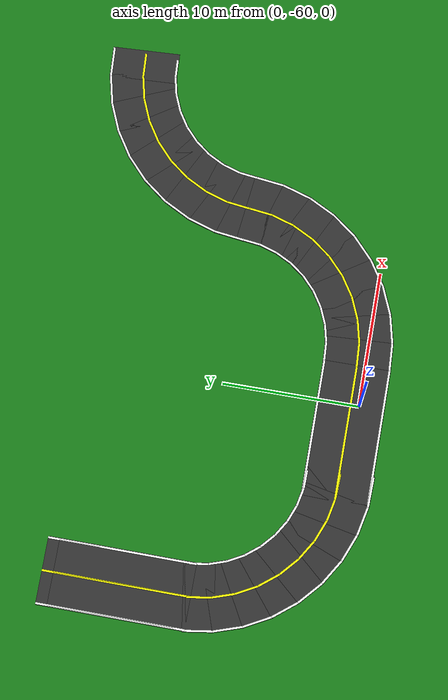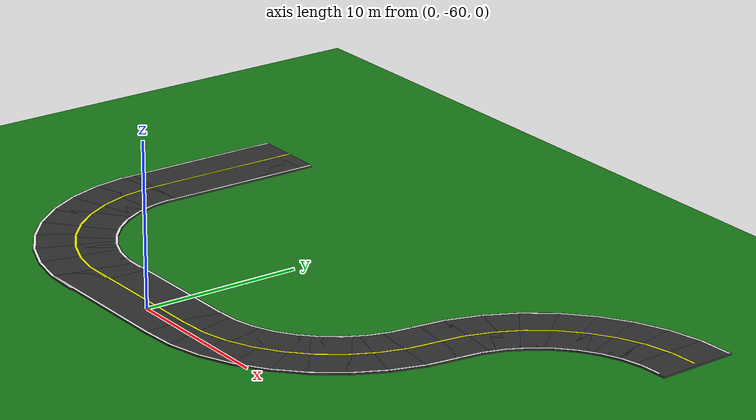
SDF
<sdf version="1.7">
 <world name="gas_station_3">
  <model name="ground_plane">
   <static>1</static>
   <link name="link">
    <collision name="collision">
     <geometry><plane><normal>0 0 1</normal><size>100 100</size></plane></geometry>
     <surface>
      <contact><collide_bitmask>65535</collide_bitmask></contact>
      <friction><ode><mu>100</mu><mu2>50</mu2></ode></friction>
     </surface>
    </collision>
    <visual name="visual">
     <geometry><plane><normal>0 0 1</normal><size>100 100</size></plane></geometry>
     <material>
      <ambient>0.1 0.5 0.1 1</ambient>
      <diffuse>0.1 0.5 0.1 1</diffuse>
      <specular>0.1 0.1 0.1 1</specular>
     </material>
    </visual>
   </link>
   <pose>-0 -20 0 0 -0 0</pose>
  </model>
  <model name="road_curved_clone_0">
   <static>1</static>
   <link name="link">
    <visual name="visual_segment_0">
     <pose>0.8716 0.0381 0 0 -0 0.0873</pose>
     <geometry><box><size>2.2789 5 0.1</size></box></geometry>
     <material>
      <ambient>0.2 0.2 0.2 1</ambient>
      <diffuse>0.2 0.2 0.2 1</diffuse>
      <specular>0.1 0.1 0.1 1</specular>
     </material>
    </visual>
    <collision name="collision_segment_0">
     <pose>0.8716 0.0381 0 0 -0 0.0873</pose>
     <geometry><box><size>2.2789 5 0.1</size></box></geometry>
    </collision>
    <visual name="visual_center_line_0">
     <pose>0.8716 0.0381 0.051 0 -0 0.0873</pose>
     <geometry><box><size>1.7931 0.15 0.001</size></box></geometry>
     <material><ambient>1 1 0 1</ambient><diffuse>1 1 0 1</diffuse></material>
    </visual>
    <visual name="visual_inner_line_0">
     <pose>0.6624 2.4289 0.051 0 -0 0.0873</pose>
     <geometry><box><size>1.3748 0.15 0.001</size></box></geometry>
     <material><ambient>1 1 1 1</ambient><diffuse>1 1 1 1</diffuse></material>
    </visual>
    <visual name="visual_outer_line_0">
     <pose>1.0807 -2.3528 0.051 0 -0 0.0873</pose>
     <geometry><box><size>2.2115 0.15 0.001</size></box></geometry>
     <material><ambient>1 1 1 1</ambient><diffuse>1 1 1 1</diffuse></material>
    </visual>
    <visual name="visual_segment_1">
     <pose>2.5882 0.3407 0 0 -0 0.2618</pose>
     <geometry><box><size>2.2789 5 0.1</size></box></geometry>
     <material>
      <ambient>0.2 0.2 0.2 1</ambient>
      <diffuse>0.2 0.2 0.2 1</diffuse>
      <specular>0.1 0.1 0.1 1</specular>
     </material>
    </visual>
    <collision name="collision_segment_1">
     <pose>2.5882 0.3407 0 0 -0 0.2618</pose>
     <geometry><box><size>2.2789 5 0.1</size></box></geometry>
    </collision>
    <visual name="visual_center_line_1">
     <pose>2.5882 0.3407 0.051 0 -0 0.2618</pose>
     <geometry><box><size>1.7931 0.15 0.001</size></box></geometry>
     <material><ambient>1 1 0 1</ambient><diffuse>1 1 0 1</diffuse></material>
    </visual>
    <visual name="visual_inner_line_1">
     <pose>1.967 2.659 0.051 0 -0 0.2618</pose>
     <geometry><box><size>1.3748 0.15 0.001</size></box></geometry>
     <material><ambient>1 1 1 1</ambient><diffuse>1 1 1 1</diffuse></material>
    </visual>
    <visual name="visual_outer_line_1">
     <pose>3.2094 -1.9775 0.051 0 -0 0.2618</pose>
     <geometry><box><size>2.2115 0.15 0.001</size></box></geometry>
     <material><ambient>1 1 1 1</ambient><diffuse>1 1 1 1</diffuse></material>
    </visual>
    <visual name="visual_segment_2">
     <pose>4.2262 0.9369 0 0 -0 0.4363</pose>
     <geometry><box><size>2.2789 5 0.1</size></box></geometry>
     <material>
      <ambient>0.2 0.2 0.2 1</ambient>
      <diffuse>0.2 0.2 0.2 1</diffuse>
      <specular>0.1 0.1 0.1 1</specular>
     </material>
    </visual>
    <collision name="collision_segment_2">
     <pose>4.2262 0.9369 0 0 -0 0.4363</pose>
     <geometry><box><size>2.2789 5 0.1</size></box></geometry>
    </collision>
    <visual name="visual_center_line_2">
     <pose>4.2262 0.9369 0.051 0 -0 0.4363</pose>
     <geometry><box><size>1.7931 0.15 0.001</size></box></geometry>
     <material><ambient>1 1 0 1</ambient><diffuse>1 1 0 1</diffuse></material>
    </visual>
    <visual name="visual_inner_line_2">
     <pose>3.2119 3.1121 0.051 0 -0 0.4363</pose>
     <geometry><box><size>1.3748 0.15 0.001</size></box></geometry>
     <material><ambient>1 1 1 1</ambient><diffuse>1 1 1 1</diffuse></material>
    </visual>
    <visual name="visual_outer_line_2">
     <pose>5.2405 -1.2382 0.051 0 -0 0.4363</pose>
     <geometry><box><size>2.2115 0.15 0.001</size></box></geometry>
     <material><ambient>1 1 1 1</ambient><diffuse>1 1 1 1</diffuse></material>
    </visual>
    <visual name="visual_segment_3">
     <pose>5.7358 1.8085 0 0 -0 0.6109</pose>
     <geometry><box><size>2.2789 5 0.1</size></box></geometry>
     <material>
      <ambient>0.2 0.2 0.2 1</ambient>
      <diffuse>0.2 0.2 0.2 1</diffuse>
      <specular>0.1 0.1 0.1 1</specular>
     </material>
    </visual>
    <collision name="collision_segment_3">
     <pose>5.7358 1.8085 0 0 -0 0.6109</pose>
     <geometry><box><size>2.2789 5 0.1</size></box></geometry>
    </collision>
    <visual name="visual_center_line_3">
     <pose>5.7358 1.8085 0.051 0 -0 0.6109</pose>
     <geometry><box><size>1.7931 0.15 0.001</size></box></geometry>
     <material><ambient>1 1 0 1</ambient><diffuse>1 1 0 1</diffuse></material>
    </visual>
    <visual name="visual_inner_line_3">
     <pose>4.3592 3.7744 0.051 0 -0 0.6109</pose>
     <geometry><box><size>1.3748 0.15 0.001</size></box></geometry>
     <material><ambient>1 1 1 1</ambient><diffuse>1 1 1 1</diffuse></material>
    </visual>
    <visual name="visual_outer_line_3">
     <pose>7.1123 -0.1575 0.051 0 -0 0.6109</pose>
     <geometry><box><size>2.2115 0.15 0.001</size></box></geometry>
     <material><ambient>1 1 1 1</ambient><diffuse>1 1 1 1</diffuse></material>
    </visual>
    <visual name="visual_segment_4">
     <pose>7.0711 2.9289 0 0 -0 0.7854</pose>
     <geometry><box><size>2.2789 5 0.1</size></box></geometry>
     <material>
      <ambient>0.2 0.2 0.2 1</ambient>
      <diffuse>0.2 0.2 0.2 1</diffuse>
      <specular>0.1 0.1 0.1 1</specular>
     </material>
    </visual>
    <collision name="collision_segment_4">
     <pose>7.0711 2.9289 0 0 -0 0.7854</pose>
     <geometry><box><size>2.2789 5 0.1</size></box></geometry>
    </collision>
    <visual name="visual_center_line_4">
     <pose>7.0711 2.9289 0.051 0 -0 0.7854</pose>
     <geometry><box><size>1.7931 0.15 0.001</size></box></geometry>
     <material><ambient>1 1 0 1</ambient><diffuse>1 1 0 1</diffuse></material>
    </visual>
    <visual name="visual_inner_line_4">
     <pose>5.374 4.626 0.051 0 -0 0.7854</pose>
     <geometry><box><size>1.3748 0.15 0.001</size></box></geometry>
     <material><ambient>1 1 1 1</ambient><diffuse>1 1 1 1</diffuse></material>
    </visual>
    <visual name="visual_outer_line_4">
     <pose>8.7681 1.2319 0.051 0 -0 0.7854</pose>
     <geometry><box><size>2.2115 0.15 0.001</size></box></geometry>
     <material><ambient>1 1 1 1</ambient><diffuse>1 1 1 1</diffuse></material>
    </visual>
    <visual name="visual_segment_5">
     <pose>8.1915 4.2642 0 0 -0 0.9599</pose>
     <geometry><box><size>2.2789 5 0.1</size></box></geometry>
     <material>
      <ambient>0.2 0.2 0.2 1</ambient>
      <diffuse>0.2 0.2 0.2 1</diffuse>
      <specular>0.1 0.1 0.1 1</specular>
     </material>
    </visual>
    <collision name="collision_segment_5">
     <pose>8.1915 4.2642 0 0 -0 0.9599</pose>
     <geometry><box><size>2.2789 5 0.1</size></box></geometry>
    </collision>
    <visual name="visual_center_line_5">
     <pose>8.1915 4.2642 0.051 0 -0 0.9599</pose>
     <geometry><box><size>1.7931 0.15 0.001</size></box></geometry>
     <material><ambient>1 1 0 1</ambient><diffuse>1 1 0 1</diffuse></material>
    </visual>
    <visual name="visual_inner_line_5">
     <pose>6.2256 5.6408 0.051 0 -0 0.9599</pose>
     <geometry><box><size>1.3748 0.15 0.001</size></box></geometry>
     <material><ambient>1 1 1 1</ambient><diffuse>1 1 1 1</diffuse></material>
    </visual>
    <visual name="visual_outer_line_5">
     <pose>10.1575 2.8877 0.051 0 -0 0.9599</pose>
     <geometry><box><size>2.2115 0.15 0.001</size></box></geometry>
     <material><ambient>1 1 1 1</ambient><diffuse>1 1 1 1</diffuse></material>
    </visual>
    <visual name="visual_segment_6">
     <pose>9.0631 5.7738 0 0 -0 1.1345</pose>
     <geometry><box><size>2.2789 5 0.1</size></box></geometry>
     <material>
      <ambient>0.2 0.2 0.2 1</ambient>
      <diffuse>0.2 0.2 0.2 1</diffuse>
      <specular>0.1 0.1 0.1 1</specular>
     </material>
    </visual>
    <collision name="collision_segment_6">
     <pose>9.0631 5.7738 0 0 -0 1.1345</pose>
     <geometry><box><size>2.2789 5 0.1</size></box></geometry>
    </collision>
    <visual name="visual_center_line_6">
     <pose>9.0631 5.7738 0.051 0 -0 1.1345</pose>
     <geometry><box><size>1.7931 0.15 0.001</size></box></geometry>
     <material><ambient>1 1 0 1</ambient><diffuse>1 1 0 1</diffuse></material>
    </visual>
    <visual name="visual_inner_line_6">
     <pose>6.8879 6.7881 0.051 0 -0 1.1345</pose>
     <geometry><box><size>1.3748 0.15 0.001</size></box></geometry>
     <material><ambient>1 1 1 1</ambient><diffuse>1 1 1 1</diffuse></material>
    </visual>
    <visual name="visual_outer_line_6">
     <pose>11.2382 4.7595 0.051 0 -0 1.1345</pose>
     <geometry><box><size>2.2115 0.15 0.001</size></box></geometry>
     <material><ambient>1 1 1 1</ambient><diffuse>1 1 1 1</diffuse></material>
    </visual>
    <visual name="visual_segment_7">
     <pose>9.6593 7.4118 0 0 -0 1.309</pose>
     <geometry><box><size>2.2789 5 0.1</size></box></geometry>
     <material>
      <ambient>0.2 0.2 0.2 1</ambient>
      <diffuse>0.2 0.2 0.2 1</diffuse>
      <specular>0.1 0.1 0.1 1</specular>
     </material>
    </visual>
    <collision name="collision_segment_7">
     <pose>9.6593 7.4118 0 0 -0 1.309</pose>
     <geometry><box><size>2.2789 5 0.1</size></box></geometry>
    </collision>
    <visual name="visual_center_line_7">
     <pose>9.6593 7.4118 0.051 0 -0 1.309</pose>
     <geometry><box><size>1.7931 0.15 0.001</size></box></geometry>
     <material><ambient>1 1 0 1</ambient><diffuse>1 1 0 1</diffuse></material>
    </visual>
    <visual name="visual_inner_line_7">
     <pose>7.341 8.033 0.051 0 -0 1.309</pose>
     <geometry><box><size>1.3748 0.15 0.001</size></box></geometry>
     <material><ambient>1 1 1 1</ambient><diffuse>1 1 1 1</diffuse></material>
    </visual>
    <visual name="visual_outer_line_7">
     <pose>11.9775 6.7906 0.051 0 -0 1.309</pose>
     <geometry><box><size>2.2115 0.15 0.001</size></box></geometry>
     <material><ambient>1 1 1 1</ambient><diffuse>1 1 1 1</diffuse></material>
    </visual>
    <visual name="visual_segment_8">
     <pose>9.9619 9.1284 0 0 -0 1.4835</pose>
     <geometry><box><size>2.2789 5 0.1</size></box></geometry>
     <material>
      <ambient>0.2 0.2 0.2 1</ambient>
      <diffuse>0.2 0.2 0.2 1</diffuse>
      <specular>0.1 0.1 0.1 1</specular>
     </material>
    </visual>
    <collision name="collision_segment_8">
     <pose>9.9619 9.1284 0 0 -0 1.4835</pose>
     <geometry><box><size>2.2789 5 0.1</size></box></geometry>
    </collision>
    <visual name="visual_center_line_8">
     <pose>9.9619 9.1284 0.051 0 -0 1.4835</pose>
     <geometry><box><size>1.7931 0.15 0.001</size></box></geometry>
     <material><ambient>1 1 0 1</ambient><diffuse>1 1 0 1</diffuse></material>
    </visual>
    <visual name="visual_inner_line_8">
     <pose>7.5711 9.3376 0.051 0 -0 1.4835</pose>
     <geometry><box><size>1.3748 0.15 0.001</size></box></geometry>
     <material><ambient>1 1 1 1</ambient><diffuse>1 1 1 1</diffuse></material>
    </visual>
    <visual name="visual_outer_line_8">
     <pose>12.3528 8.9193 0.051 0 -0 1.4835</pose>
     <geometry><box><size>2.2115 0.15 0.001</size></box></geometry>
     <material><ambient>1 1 1 1</ambient><diffuse>1 1 1 1</diffuse></material>
    </visual>
   </link>
   <pose>23.6842 -40.1646 0 0 -0 3.10157</pose>
  </model>
  <model name="road_curved_clone_0_clone">
   <static>1</static>
   <link name="link">
    <visual name="visual_segment_0">
     <pose>0.8716 0.0381 0 0 -0 0.0873</pose>
     <geometry><box><size>2.2789 5 0.1</size></box></geometry>
     <material>
      <ambient>0.2 0.2 0.2 1</ambient>
      <diffuse>0.2 0.2 0.2 1</diffuse>
      <specular>0.1 0.1 0.1 1</specular>
     </material>
    </visual>
    <collision name="collision_segment_0">
     <pose>0.8716 0.0381 0 0 -0 0.0873</pose>
     <geometry><box><size>2.2789 5 0.1</size></box></geometry>
    </collision>
    <visual name="visual_center_line_0">
     <pose>0.8716 0.0381 0.051 0 -0 0.0873</pose>
     <geometry><box><size>1.7931 0.15 0.001</size></box></geometry>
     <material><ambient>1 1 0 1</ambient><diffuse>1 1 0 1</diffuse></material>
    </visual>
    <visual name="visual_inner_line_0">
     <pose>0.6624 2.4289 0.051 0 -0 0.0873</pose>
     <geometry><box><size>1.3748 0.15 0.001</size></box></geometry>
     <material><ambient>1 1 1 1</ambient><diffuse>1 1 1 1</diffuse></material>
    </visual>
    <visual name="visual_outer_line_0">
     <pose>1.0807 -2.3528 0.051 0 -0 0.0873</pose>
     <geometry><box><size>2.2115 0.15 0.001</size></box></geometry>
     <material><ambient>1 1 1 1</ambient><diffuse>1 1 1 1</diffuse></material>
    </visual>
    <visual name="visual_segment_1">
     <pose>2.5882 0.3407 0 0 -0 0.2618</pose>
     <geometry><box><size>2.2789 5 0.1</size></box></geometry>
     <material>
      <ambient>0.2 0.2 0.2 1</ambient>
      <diffuse>0.2 0.2 0.2 1</diffuse>
      <specular>0.1 0.1 0.1 1</specular>
     </material>
    </visual>
    <collision name="collision_segment_1">
     <pose>2.5882 0.3407 0 0 -0 0.2618</pose>
     <geometry><box><size>2.2789 5 0.1</size></box></geometry>
    </collision>
    <visual name="visual_center_line_1">
     <pose>2.5882 0.3407 0.051 0 -0 0.2618</pose>
     <geometry><box><size>1.7931 0.15 0.001</size></box></geometry>
     <material><ambient>1 1 0 1</ambient><diffuse>1 1 0 1</diffuse></material>
    </visual>
    <visual name="visual_inner_line_1">
     <pose>1.967 2.659 0.051 0 -0 0.2618</pose>
     <geometry><box><size>1.3748 0.15 0.001</size></box></geometry>
     <material><ambient>1 1 1 1</ambient><diffuse>1 1 1 1</diffuse></material>
    </visual>
    <visual name="visual_outer_line_1">
     <pose>3.2094 -1.9775 0.051 0 -0 0.2618</pose>
     <geometry><box><size>2.2115 0.15 0.001</size></box></geometry>
     <material><ambient>1 1 1 1</ambient><diffuse>1 1 1 1</diffuse></material>
    </visual>
    <visual name="visual_segment_2">
     <pose>4.2262 0.9369 0 0 -0 0.4363</pose>
     <geometry><box><size>2.2789 5 0.1</size></box></geometry>
     <material>
      <ambient>0.2 0.2 0.2 1</ambient>
      <diffuse>0.2 0.2 0.2 1</diffuse>
      <specular>0.1 0.1 0.1 1</specular>
     </material>
    </visual>
    <collision name="collision_segment_2">
     <pose>4.2262 0.9369 0 0 -0 0.4363</pose>
     <geometry><box><size>2.2789 5 0.1</size></box></geometry>
    </collision>
    <visual name="visual_center_line_2">
     <pose>4.2262 0.9369 0.051 0 -0 0.4363</pose>
     <geometry><box><size>1.7931 0.15 0.001</size></box></geometry>
     <material><ambient>1 1 0 1</ambient><diffuse>1 1 0 1</diffuse></material>
    </visual>
    <visual name="visual_inner_line_2">
     <pose>3.2119 3.1121 0.051 0 -0 0.4363</pose>
     <geometry><box><size>1.3748 0.15 0.001</size></box></geometry>
     <material><ambient>1 1 1 1</ambient><diffuse>1 1 1 1</diffuse></material>
    </visual>
    <visual name="visual_outer_line_2">
     <pose>5.2405 -1.2382 0.051 0 -0 0.4363</pose>
     <geometry><box><size>2.2115 0.15 0.001</size></box></geometry>
     <material><ambient>1 1 1 1</ambient><diffuse>1 1 1 1</diffuse></material>
    </visual>
    <visual name="visual_segment_3">
     <pose>5.7358 1.8085 0 0 -0 0.6109</pose>
     <geometry><box><size>2.2789 5 0.1</size></box></geometry>
     <material>
      <ambient>0.2 0.2 0.2 1</ambient>
      <diffuse>0.2 0.2 0.2 1</diffuse>
      <specular>0.1 0.1 0.1 1</specular>
     </material>
    </visual>
    <collision name="collision_segment_3">
     <pose>5.7358 1.8085 0 0 -0 0.6109</pose>
     <geometry><box><size>2.2789 5 0.1</size></box></geometry>
    </collision>
    <visual name="visual_center_line_3">
     <pose>5.7358 1.8085 0.051 0 -0 0.6109</pose>
     <geometry><box><size>1.7931 0.15 0.001</size></box></geometry>
     <material><ambient>1 1 0 1</ambient><diffuse>1 1 0 1</diffuse></material>
    </visual>
    <visual name="visual_inner_line_3">
     <pose>4.3592 3.7744 0.051 0 -0 0.6109</pose>
     <geometry><box><size>1.3748 0.15 0.001</size></box></geometry>
     <material><ambient>1 1 1 1</ambient><diffuse>1 1 1 1</diffuse></material>
    </visual>
    <visual name="visual_outer_line_3">
     <pose>7.1123 -0.1575 0.051 0 -0 0.6109</pose>
     <geometry><box><size>2.2115 0.15 0.001</size></box></geometry>
     <material><ambient>1 1 1 1</ambient><diffuse>1 1 1 1</diffuse></material>
    </visual>
    <visual name="visual_segment_4">
     <pose>7.0711 2.9289 0 0 -0 0.7854</pose>
     <geometry><box><size>2.2789 5 0.1</size></box></geometry>
     <material>
      <ambient>0.2 0.2 0.2 1</ambient>
      <diffuse>0.2 0.2 0.2 1</diffuse>
      <specular>0.1 0.1 0.1 1</specular>
     </material>
    </visual>
    <collision name="collision_segment_4">
     <pose>7.0711 2.9289 0 0 -0 0.7854</pose>
     <geometry><box><size>2.2789 5 0.1</size></box></geometry>
    </collision>
    <visual name="visual_center_line_4">
     <pose>7.0711 2.9289 0.051 0 -0 0.7854</pose>
     <geometry><box><size>1.7931 0.15 0.001</size></box></geometry>
     <material><ambient>1 1 0 1</ambient><diffuse>1 1 0 1</diffuse></material>
    </visual>
    <visual name="visual_inner_line_4">
     <pose>5.374 4.626 0.051 0 -0 0.7854</pose>
     <geometry><box><size>1.3748 0.15 0.001</size></box></geometry>
     <material><ambient>1 1 1 1</ambient><diffuse>1 1 1 1</diffuse></material>
    </visual>
    <visual name="visual_outer_line_4">
     <pose>8.7681 1.2319 0.051 0 -0 0.7854</pose>
     <geometry><box><size>2.2115 0.15 0.001</size></box></geometry>
     <material><ambient>1 1 1 1</ambient><diffuse>1 1 1 1</diffuse></material>
    </visual>
    <visual name="visual_segment_5">
     <pose>8.1915 4.2642 0 0 -0 0.9599</pose>
     <geometry><box><size>2.2789 5 0.1</size></box></geometry>
     <material>
      <ambient>0.2 0.2 0.2 1</ambient>
      <diffuse>0.2 0.2 0.2 1</diffuse>
      <specular>0.1 0.1 0.1 1</specular>
     </material>
    </visual>
    <collision name="collision_segment_5">
     <pose>8.1915 4.2642 0 0 -0 0.9599</pose>
     <geometry><box><size>2.2789 5 0.1</size></box></geometry>
    </collision>
    <visual name="visual_center_line_5">
     <pose>8.1915 4.2642 0.051 0 -0 0.9599</pose>
     <geometry><box><size>1.7931 0.15 0.001</size></box></geometry>
     <material><ambient>1 1 0 1</ambient><diffuse>1 1 0 1</diffuse></material>
    </visual>
    <visual name="visual_inner_line_5">
     <pose>6.2256 5.6408 0.051 0 -0 0.9599</pose>
     <geometry><box><size>1.3748 0.15 0.001</size></box></geometry>
     <material><ambient>1 1 1 1</ambient><diffuse>1 1 1 1</diffuse></material>
    </visual>
    <visual name="visual_outer_line_5">
     <pose>10.1575 2.8877 0.051 0 -0 0.9599</pose>
     <geometry><box><size>2.2115 0.15 0.001</size></box></geometry>
     <material><ambient>1 1 1 1</ambient><diffuse>1 1 1 1</diffuse></material>
    </visual>
    <visual name="visual_segment_6">
     <pose>9.0631 5.7738 0 0 -0 1.1345</pose>
     <geometry><box><size>2.2789 5 0.1</size></box></geometry>
     <material>
      <ambient>0.2 0.2 0.2 1</ambient>
      <diffuse>0.2 0.2 0.2 1</diffuse>
      <specular>0.1 0.1 0.1 1</specular>
     </material>
    </visual>
    <collision name="collision_segment_6">
     <pose>9.0631 5.7738 0 0 -0 1.1345</pose>
     <geometry><box><size>2.2789 5 0.1</size></box></geometry>
    </collision>
    <visual name="visual_center_line_6">
     <pose>9.0631 5.7738 0.051 0 -0 1.1345</pose>
     <geometry><box><size>1.7931 0.15 0.001</size></box></geometry>
     <material><ambient>1 1 0 1</ambient><diffuse>1 1 0 1</diffuse></material>
    </visual>
    <visual name="visual_inner_line_6">
     <pose>6.8879 6.7881 0.051 0 -0 1.1345</pose>
     <geometry><box><size>1.3748 0.15 0.001</size></box></geometry>
     <material><ambient>1 1 1 1</ambient><diffuse>1 1 1 1</diffuse></material>
    </visual>
    <visual name="visual_outer_line_6">
     <pose>11.2382 4.7595 0.051 0 -0 1.1345</pose>
     <geometry><box><size>2.2115 0.15 0.001</size></box></geometry>
     <material><ambient>1 1 1 1</ambient><diffuse>1 1 1 1</diffuse></material>
    </visual>
    <visual name="visual_segment_7">
     <pose>9.6593 7.4118 0 0 -0 1.309</pose>
     <geometry><box><size>2.2789 5 0.1</size></box></geometry>
     <material>
      <ambient>0.2 0.2 0.2 1</ambient>
      <diffuse>0.2 0.2 0.2 1</diffuse>
      <specular>0.1 0.1 0.1 1</specular>
     </material>
    </visual>
    <collision name="collision_segment_7">
     <pose>9.6593 7.4118 0 0 -0 1.309</pose>
     <geometry><box><size>2.2789 5 0.1</size></box></geometry>
    </collision>
    <visual name="visual_center_line_7">
     <pose>9.6593 7.4118 0.051 0 -0 1.309</pose>
     <geometry><box><size>1.7931 0.15 0.001</size></box></geometry>
     <material><ambient>1 1 0 1</ambient><diffuse>1 1 0 1</diffuse></material>
    </visual>
    <visual name="visual_inner_line_7">
     <pose>7.341 8.033 0.051 0 -0 1.309</pose>
     <geometry><box><size>1.3748 0.15 0.001</size></box></geometry>
     <material><ambient>1 1 1 1</ambient><diffuse>1 1 1 1</diffuse></material>
    </visual>
    <visual name="visual_outer_line_7">
     <pose>11.9775 6.7906 0.051 0 -0 1.309</pose>
     <geometry><box><size>2.2115 0.15 0.001</size></box></geometry>
     <material><ambient>1 1 1 1</ambient><diffuse>1 1 1 1</diffuse></material>
    </visual>
    <visual name="visual_segment_8">
     <pose>9.9619 9.1284 0 0 -0 1.4835</pose>
     <geometry><box><size>2.2789 5 0.1</size></box></geometry>
     <material>
      <ambient>0.2 0.2 0.2 1</ambient>
      <diffuse>0.2 0.2 0.2 1</diffuse>
      <specular>0.1 0.1 0.1 1</specular>
     </material>
    </visual>
    <collision name="collision_segment_8">
     <pose>9.9619 9.1284 0 0 -0 1.4835</pose>
     <geometry><box><size>2.2789 5 0.1</size></box></geometry>
    </collision>
    <visual name="visual_center_line_8">
     <pose>9.9619 9.1284 0.051 0 -0 1.4835</pose>
     <geometry><box><size>1.7931 0.15 0.001</size></box></geometry>
     <material><ambient>1 1 0 1</ambient><diffuse>1 1 0 1</diffuse></material>
    </visual>
    <visual name="visual_inner_line_8">
     <pose>7.5711 9.3376 0.051 0 -0 1.4835</pose>
     <geometry><box><size>1.3748 0.15 0.001</size></box></geometry>
     <material><ambient>1 1 1 1</ambient><diffuse>1 1 1 1</diffuse></material>
    </visual>
    <visual name="visual_outer_line_8">
     <pose>12.3528 8.9193 0.051 0 -0 1.4835</pose>
     <geometry><box><size>2.2115 0.15 0.001</size></box></geometry>
     <material><ambient>1 1 1 1</ambient><diffuse>1 1 1 1</diffuse></material>
    </visual>
   </link>
   <pose>2.8952 -59.3495 0 0 0 -0.034162</pose>
  </model>
  <model name="road_straight_clone_clone_clone_0">
   <static>1</static>
   <link name="link">
    <collision name="collision"><geometry><box><size>10 5 0.1</size></box></geometry></collision>
    <visual name="visual_surface">
     <geometry><box><size>10 5 0.1</size></box></geometry>
     <material>
      <ambient>0.2 0.2 0.2 1</ambient>
      <diffuse>0.2 0.2 0.2 1</diffuse>
      <specular>0.1 0.1 0.1 1</specular>
     </material>
    </visual>
    <visual name="visual_center_line">
     <pose>0 0 0.051 0 -0 0</pose>
     <geometry><box><size>10 0.15 0.001</size></box></geometry>
     <material><ambient>1 1 0 1</ambient><diffuse>1 1 0 1</diffuse></material>
    </visual>
    <visual name="visual_left_line">
     <pose>0 2.4 0.051 0 -0 0</pose>
     <geometry><box><size>10 0.15 0.001</size></box></geometry>
     <material><ambient>1 1 1 1</ambient><diffuse>1 1 1 1</diffuse></material>
    </visual>
    <visual name="visual_right_line">
     <pose>0 -2.4 0.051 0 -0 0</pose>
     <geometry><box><size>10 0.15 0.001</size></box></geometry>
     <material><ambient>1 1 1 1</ambient><diffuse>1 1 1 1</diffuse></material>
    </visual>
   </link>
   <pose>-2.02069 -59.3978 0 0 -0 0</pose>
  </model>
  <model name="road_curved_clone_2">
   <static>1</static>
   <link name="link">
    <visual name="visual_segment_0">
     <pose>0.8716 0.0381 0 0 -0 0.0873</pose>
     <geometry><box><size>2.2789 5 0.1</size></box></geometry>
     <material>
      <ambient>0.2 0.2 0.2 1</ambient>
      <diffuse>0.2 0.2 0.2 1</diffuse>
      <specular>0.1 0.1 0.1 1</specular>
     </material>
    </visual>
    <collision name="collision_segment_0">
     <pose>0.8716 0.0381 0 0 -0 0.0873</pose>
     <geometry><box><size>2.2789 5 0.1</size></box></geometry>
    </collision>
    <visual name="visual_center_line_0">
     <pose>0.8716 0.0381 0.051 0 -0 0.0873</pose>
     <geometry><box><size>1.7931 0.15 0.001</size></box></geometry>
     <material><ambient>1 1 0 1</ambient><diffuse>1 1 0 1</diffuse></material>
    </visual>
    <visual name="visual_inner_line_0">
     <pose>0.6624 2.4289 0.051 0 -0 0.0873</pose>
     <geometry><box><size>1.3748 0.15 0.001</size></box></geometry>
     <material><ambient>1 1 1 1</ambient><diffuse>1 1 1 1</diffuse></material>
    </visual>
    <visual name="visual_outer_line_0">
     <pose>1.0807 -2.3528 0.051 0 -0 0.0873</pose>
     <geometry><box><size>2.2115 0.15 0.001</size></box></geometry>
     <material><ambient>1 1 1 1</ambient><diffuse>1 1 1 1</diffuse></material>
    </visual>
    <visual name="visual_segment_1">
     <pose>2.5882 0.3407 0 0 -0 0.2618</pose>
     <geometry><box><size>2.2789 5 0.1</size></box></geometry>
     <material>
      <ambient>0.2 0.2 0.2 1</ambient>
      <diffuse>0.2 0.2 0.2 1</diffuse>
      <specular>0.1 0.1 0.1 1</specular>
     </material>
    </visual>
    <collision name="collision_segment_1">
     <pose>2.5882 0.3407 0 0 -0 0.2618</pose>
     <geometry><box><size>2.2789 5 0.1</size></box></geometry>
    </collision>
    <visual name="visual_center_line_1">
     <pose>2.5882 0.3407 0.051 0 -0 0.2618</pose>
     <geometry><box><size>1.7931 0.15 0.001</size></box></geometry>
     <material><ambient>1 1 0 1</ambient><diffuse>1 1 0 1</diffuse></material>
    </visual>
    <visual name="visual_inner_line_1">
     <pose>1.967 2.659 0.051 0 -0 0.2618</pose>
     <geometry><box><size>1.3748 0.15 0.001</size></box></geometry>
     <material><ambient>1 1 1 1</ambient><diffuse>1 1 1 1</diffuse></material>
    </visual>
    <visual name="visual_outer_line_1">
     <pose>3.2094 -1.9775 0.051 0 -0 0.2618</pose>
     <geometry><box><size>2.2115 0.15 0.001</size></box></geometry>
     <material><ambient>1 1 1 1</ambient><diffuse>1 1 1 1</diffuse></material>
    </visual>
    <visual name="visual_segment_2">
     <pose>4.2262 0.9369 0 0 -0 0.4363</pose>
     <geometry><box><size>2.2789 5 0.1</size></box></geometry>
     <material>
      <ambient>0.2 0.2 0.2 1</ambient>
      <diffuse>0.2 0.2 0.2 1</diffuse>
      <specular>0.1 0.1 0.1 1</specular>
     </material>
    </visual>
    <collision name="collision_segment_2">
     <pose>4.2262 0.9369 0 0 -0 0.4363</pose>
     <geometry><box><size>2.2789 5 0.1</size></box></geometry>
    </collision>
    <visual name="visual_center_line_2">
     <pose>4.2262 0.9369 0.051 0 -0 0.4363</pose>
     <geometry><box><size>1.7931 0.15 0.001</size></box></geometry>
     <material><ambient>1 1 0 1</ambient><diffuse>1 1 0 1</diffuse></material>
    </visual>
    <visual name="visual_inner_line_2">
     <pose>3.2119 3.1121 0.051 0 -0 0.4363</pose>
     <geometry><box><size>1.3748 0.15 0.001</size></box></geometry>
     <material><ambient>1 1 1 1</ambient><diffuse>1 1 1 1</diffuse></material>
    </visual>
    <visual name="visual_outer_line_2">
     <pose>5.2405 -1.2382 0.051 0 -0 0.4363</pose>
     <geometry><box><size>2.2115 0.15 0.001</size></box></geometry>
     <material><ambient>1 1 1 1</ambient><diffuse>1 1 1 1</diffuse></material>
    </visual>
    <visual name="visual_segment_3">
     <pose>5.7358 1.8085 0 0 -0 0.6109</pose>
     <geometry><box><size>2.2789 5 0.1</size></box></geometry>
     <material>
      <ambient>0.2 0.2 0.2 1</ambient>
      <diffuse>0.2 0.2 0.2 1</diffuse>
      <specular>0.1 0.1 0.1 1</specular>
     </material>
    </visual>
    <collision name="collision_segment_3">
     <pose>5.7358 1.8085 0 0 -0 0.6109</pose>
     <geometry><box><size>2.2789 5 0.1</size></box></geometry>
    </collision>
    <visual name="visual_center_line_3">
     <pose>5.7358 1.8085 0.051 0 -0 0.6109</pose>
     <geometry><box><size>1.7931 0.15 0.001</size></box></geometry>
     <material><ambient>1 1 0 1</ambient><diffuse>1 1 0 1</diffuse></material>
    </visual>
    <visual name="visual_inner_line_3">
     <pose>4.3592 3.7744 0.051 0 -0 0.6109</pose>
     <geometry><box><size>1.3748 0.15 0.001</size></box></geometry>
     <material><ambient>1 1 1 1</ambient><diffuse>1 1 1 1</diffuse></material>
    </visual>
    <visual name="visual_outer_line_3">
     <pose>7.1123 -0.1575 0.051 0 -0 0.6109</pose>
     <geometry><box><size>2.2115 0.15 0.001</size></box></geometry>
     <material><ambient>1 1 1 1</ambient><diffuse>1 1 1 1</diffuse></material>
    </visual>
    <visual name="visual_segment_4">
     <pose>7.0711 2.9289 0 0 -0 0.7854</pose>
     <geometry><box><size>2.2789 5 0.1</size></box></geometry>
     <material>
      <ambient>0.2 0.2 0.2 1</ambient>
      <diffuse>0.2 0.2 0.2 1</diffuse>
      <specular>0.1 0.1 0.1 1</specular>
     </material>
    </visual>
    <collision name="collision_segment_4">
     <pose>7.0711 2.9289 0 0 -0 0.7854</pose>
     <geometry><box><size>2.2789 5 0.1</size></box></geometry>
    </collision>
    <visual name="visual_center_line_4">
     <pose>7.0711 2.9289 0.051 0 -0 0.7854</pose>
     <geometry><box><size>1.7931 0.15 0.001</size></box></geometry>
     <material><ambient>1 1 0 1</ambient><diffuse>1 1 0 1</diffuse></material>
    </visual>
    <visual name="visual_inner_line_4">
     <pose>5.374 4.626 0.051 0 -0 0.7854</pose>
     <geometry><box><size>1.3748 0.15 0.001</size></box></geometry>
     <material><ambient>1 1 1 1</ambient><diffuse>1 1 1 1</diffuse></material>
    </visual>
    <visual name="visual_outer_line_4">
     <pose>8.7681 1.2319 0.051 0 -0 0.7854</pose>
     <geometry><box><size>2.2115 0.15 0.001</size></box></geometry>
     <material><ambient>1 1 1 1</ambient><diffuse>1 1 1 1</diffuse></material>
    </visual>
    <visual name="visual_segment_5">
     <pose>8.1915 4.2642 0 0 -0 0.9599</pose>
     <geometry><box><size>2.2789 5 0.1</size></box></geometry>
     <material>
      <ambient>0.2 0.2 0.2 1</ambient>
      <diffuse>0.2 0.2 0.2 1</diffuse>
      <specular>0.1 0.1 0.1 1</specular>
     </material>
    </visual>
    <collision name="collision_segment_5">
     <pose>8.1915 4.2642 0 0 -0 0.9599</pose>
     <geometry><box><size>2.2789 5 0.1</size></box></geometry>
    </collision>
    <visual name="visual_center_line_5">
     <pose>8.1915 4.2642 0.051 0 -0 0.9599</pose>
     <geometry><box><size>1.7931 0.15 0.001</size></box></geometry>
     <material><ambient>1 1 0 1</ambient><diffuse>1 1 0 1</diffuse></material>
    </visual>
    <visual name="visual_inner_line_5">
     <pose>6.2256 5.6408 0.051 0 -0 0.9599</pose>
     <geometry><box><size>1.3748 0.15 0.001</size></box></geometry>
     <material><ambient>1 1 1 1</ambient><diffuse>1 1 1 1</diffuse></material>
    </visual>
    <visual name="visual_outer_line_5">
     <pose>10.1575 2.8877 0.051 0 -0 0.9599</pose>
     <geometry><box><size>2.2115 0.15 0.001</size></box></geometry>
     <material><ambient>1 1 1 1</ambient><diffuse>1 1 1 1</diffuse></material>
    </visual>
    <visual name="visual_segment_6">
     <pose>9.0631 5.7738 0 0 -0 1.1345</pose>
     <geometry><box><size>2.2789 5 0.1</size></box></geometry>
     <material>
      <ambient>0.2 0.2 0.2 1</ambient>
      <diffuse>0.2 0.2 0.2 1</diffuse>
      <specular>0.1 0.1 0.1 1</specular>
     </material>
    </visual>
    <collision name="collision_segment_6">
     <pose>9.0631 5.7738 0 0 -0 1.1345</pose>
     <geometry><box><size>2.2789 5 0.1</size></box></geometry>
    </collision>
    <visual name="visual_center_line_6">
     <pose>9.0631 5.7738 0.051 0 -0 1.1345</pose>
     <geometry><box><size>1.7931 0.15 0.001</size></box></geometry>
     <material><ambient>1 1 0 1</ambient><diffuse>1 1 0 1</diffuse></material>
    </visual>
    <visual name="visual_inner_line_6">
     <pose>6.8879 6.7881 0.051 0 -0 1.1345</pose>
     <geometry><box><size>1.3748 0.15 0.001</size></box></geometry>
     <material><ambient>1 1 1 1</ambient><diffuse>1 1 1 1</diffuse></material>
    </visual>
    <visual name="visual_outer_line_6">
     <pose>11.2382 4.7595 0.051 0 -0 1.1345</pose>
     <geometry><box><size>2.2115 0.15 0.001</size></box></geometry>
     <material><ambient>1 1 1 1</ambient><diffuse>1 1 1 1</diffuse></material>
    </visual>
    <visual name="visual_segment_7">
     <pose>9.6593 7.4118 0 0 -0 1.309</pose>
     <geometry><box><size>2.2789 5 0.1</size></box></geometry>
     <material>
      <ambient>0.2 0.2 0.2 1</ambient>
      <diffuse>0.2 0.2 0.2 1</diffuse>
      <specular>0.1 0.1 0.1 1</specular>
     </material>
    </visual>
    <collision name="collision_segment_7">
     <pose>9.6593 7.4118 0 0 -0 1.309</pose>
     <geometry><box><size>2.2789 5 0.1</size></box></geometry>
    </collision>
    <visual name="visual_center_line_7">
     <pose>9.6593 7.4118 0.051 0 -0 1.309</pose>
     <geometry><box><size>1.7931 0.15 0.001</size></box></geometry>
     <material><ambient>1 1 0 1</ambient><diffuse>1 1 0 1</diffuse></material>
    </visual>
    <visual name="visual_inner_line_7">
     <pose>7.341 8.033 0.051 0 -0 1.309</pose>
     <geometry><box><size>1.3748 0.15 0.001</size></box></geometry>
     <material><ambient>1 1 1 1</ambient><diffuse>1 1 1 1</diffuse></material>
    </visual>
    <visual name="visual_outer_line_7">
     <pose>11.9775 6.7906 0.051 0 -0 1.309</pose>
     <geometry><box><size>2.2115 0.15 0.001</size></box></geometry>
     <material><ambient>1 1 1 1</ambient><diffuse>1 1 1 1</diffuse></material>
    </visual>
    <visual name="visual_segment_8">
     <pose>9.9619 9.1284 0 0 -0 1.4835</pose>
     <geometry><box><size>2.2789 5 0.1</size></box></geometry>
     <material>
      <ambient>0.2 0.2 0.2 1</ambient>
      <diffuse>0.2 0.2 0.2 1</diffuse>
      <specular>0.1 0.1 0.1 1</specular>
     </material>
    </visual>
    <collision name="collision_segment_8">
     <pose>9.9619 9.1284 0 0 -0 1.4835</pose>
     <geometry><box><size>2.2789 5 0.1</size></box></geometry>
    </collision>
    <visual name="visual_center_line_8">
     <pose>9.9619 9.1284 0.051 0 -0 1.4835</pose>
     <geometry><box><size>1.7931 0.15 0.001</size></box></geometry>
     <material><ambient>1 1 0 1</ambient><diffuse>1 1 0 1</diffuse></material>
    </visual>
    <visual name="visual_inner_line_8">
     <pose>7.5711 9.3376 0.051 0 -0 1.4835</pose>
     <geometry><box><size>1.3748 0.15 0.001</size></box></geometry>
     <material><ambient>1 1 1 1</ambient><diffuse>1 1 1 1</diffuse></material>
    </visual>
    <visual name="visual_outer_line_8">
     <pose>12.3528 8.9193 0.051 0 -0 1.4835</pose>
     <geometry><box><size>2.2115 0.15 0.001</size></box></geometry>
     <material><ambient>1 1 1 1</ambient><diffuse>1 1 1 1</diffuse></material>
    </visual>
   </link>
   <pose>-15.693 -50.0471 0 0 0 -1.51212</pose>
  </model>
  <model name="road_straight_clone_clone_clone_clone_0_clone_clone_clone">
   <static>1</static>
   <link name="link">
    <collision name="collision"><geometry><box><size>10 5 0.1</size></box></geometry></collision>
    <visual name="visual_surface">
     <geometry><box><size>10 5 0.1</size></box></geometry>
     <material>
      <ambient>0.2 0.2 0.2 1</ambient>
      <diffuse>0.2 0.2 0.2 1</diffuse>
      <specular>0.1 0.1 0.1 1</specular>
     </material>
    </visual>
    <visual name="visual_center_line">
     <pose>0 0 0.051 0 -0 0</pose>
     <geometry><box><size>10 0.15 0.001</size></box></geometry>
     <material><ambient>1 1 0 1</ambient><diffuse>1 1 0 1</diffuse></material>
    </visual>
    <visual name="visual_left_line">
     <pose>0 2.4 0.051 0 -0 0</pose>
     <geometry><box><size>10 0.15 0.001</size></box></geometry>
     <material><ambient>1 1 1 1</ambient><diffuse>1 1 1 1</diffuse></material>
    </visual>
    <visual name="visual_right_line">
     <pose>0 -2.4 0.051 0 -0 0</pose>
     <geometry><box><size>10 0.15 0.001</size></box></geometry>
     <material><ambient>1 1 1 1</ambient><diffuse>1 1 1 1</diffuse></material>
    </visual>
   </link>
   <pose>-15.6282 -44.5199 0 0 -0 1.56099</pose>
  </model>
  <model name="road_straight_clone_clone_clone_clone_0_clone_clone_clone_clone">
   <static>1</static>
   <link name="link">
    <collision name="collision"><geometry><box><size>10 5 0.1</size></box></geometry></collision>
    <visual name="visual_surface">
     <geometry><box><size>10 5 0.1</size></box></geometry>
     <material>
      <ambient>0.2 0.2 0.2 1</ambient>
      <diffuse>0.2 0.2 0.2 1</diffuse>
      <specular>0.1 0.1 0.1 1</specular>
     </material>
    </visual>
    <visual name="visual_center_line">
     <pose>0 0 0.051 0 -0 0</pose>
     <geometry><box><size>10 0.15 0.001</size></box></geometry>
     <material><ambient>1 1 0 1</ambient><diffuse>1 1 0 1</diffuse></material>
    </visual>
    <visual name="visual_left_line">
     <pose>0 2.4 0.051 0 -0 0</pose>
     <geometry><box><size>10 0.15 0.001</size></box></geometry>
     <material><ambient>1 1 1 1</ambient><diffuse>1 1 1 1</diffuse></material>
    </visual>
    <visual name="visual_right_line">
     <pose>0 -2.4 0.051 0 -0 0</pose>
     <geometry><box><size>10 0.15 0.001</size></box></geometry>
     <material><ambient>1 1 1 1</ambient><diffuse>1 1 1 1</diffuse></material>
    </visual>
   </link>
   <pose>-15.6335 -45.347 0 0 -0 1.56099</pose>
  </model>
 </world>
</sdf>
